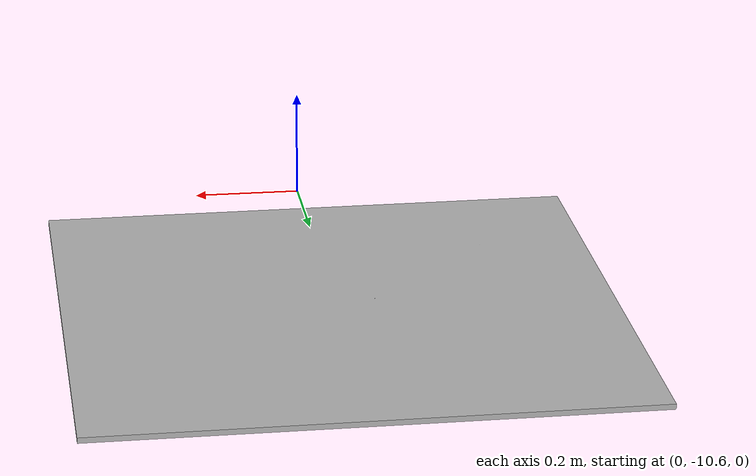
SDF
<?xml version='1.0'?>
<sdf version='1.9'>
  <model name='land_base'>
    <link name='link_E'>
      <inertial>
        <mass>1</mass>
        <inertia>
          <ixx>0.1</ixx>
          <ixy>0.0</ixy>
          <ixz>0.0</ixz>
          <iyy>0.1</iyy>
          <iyz>0.0</iyz>
          <izz>0.1</izz>
        </inertia>
      </inertial>
      <pose>0 0 0 0 0 0</pose>
      <visual name='visual'>
        <pose>0 -10 0 0 0 0</pose> # 0 -10 0 0 0 0
        <geometry>
          <mesh>
            <uri>model://land_base/meshes/land_base_1.obj</uri>
            <scale>1 1 1</scale>
          </mesh>
        </geometry>
        <transparency>0</transparency>
        <cast_shadows>true</cast_shadows>
      </visual>
      <collision name='collision'>
        <laser_retro>0</laser_retro>
        <max_contacts>100</max_contacts>
        <pose>0 -10 0 0 0 0</pose> # 0 -10 0 0 0 0
        <geometry>
          <mesh>
            <uri>model://land_base/meshes/land_base_1.obj</uri>
            <scale>1 1 1</scale>
          </mesh>
        </geometry>
        <surface>
          <friction>
            <ode>
              <mu>100</mu>
              <mu2>100</mu2>
              <fdir1>0 0 0</fdir1>
              <slip1>0</slip1>
              <slip2>0</slip2>
            </ode>
            <torsional>
              <coefficient>1</coefficient>
              <patch_radius>1</patch_radius>
              <surface_radius>1</surface_radius>
              <use_patch_radius>true</use_patch_radius>
              <ode>
                <slip>0</slip>
              </ode>
            </torsional>
          </friction>
          <bounce>
            <restitution_coefficient>1</restitution_coefficient>
            <threshold>1e+06</threshold>
          </bounce>
          <contact>
            <collide_without_contact>false</collide_without_contact>
            <collide_without_contact_bitmask>1</collide_without_contact_bitmask>
            <collide_bitmask>1</collide_bitmask>
            <ode>
              <soft_cfm>0</soft_cfm>
              <soft_erp>0.2</soft_erp>
              <kp>1e+13</kp>
              <kd>1</kd>
              <max_vel>0.01</max_vel>
              <min_depth>0</min_depth>
            </ode>
            <bullet>
              <split_impulse>true</split_impulse>
              <split_impulse_penetration_threshold>-0.01</split_impulse_penetration_threshold>
              <soft_cfm>0</soft_cfm>
              <soft_erp>0.2</soft_erp>
              <kp>1e+13</kp>
              <kd>1</kd>
            </bullet>
          </contact>
        </surface>
      </collision>
    </link>
    <static>true</static>
    <allow_auto_disable>true</allow_auto_disable>
  </model>
</sdf>
